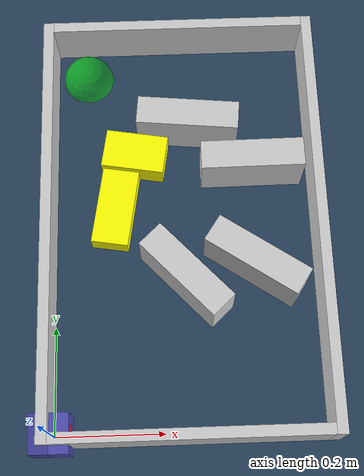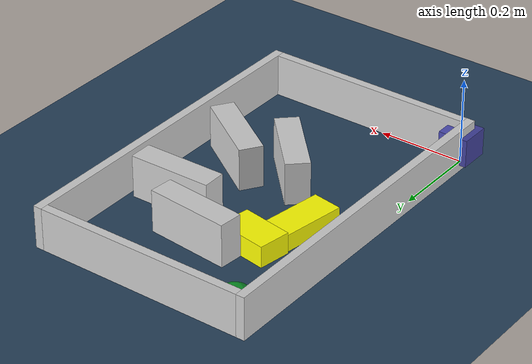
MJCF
<?xml version="1.0" ?>
<mujoco model="generated_environment">
  <option cone="elliptic" integrator="implicitfast" iterations="100" timestep="0.002"/>
  <default>
    <geom density="1"/>
  </default>
  <asset>
    <texture builtin="gradient" height="3072" rgb1="0.3 0.5 0.7" rgb2="0 0 0" type="skybox" width="512"/>
    <texture builtin="checker" height="300" mark="edge" markrgb="0.8 0.8 0.8" name="groundplane" rgb1="0.2 0.3 0.4" rgb2="0.1 0.2 0.3" type="2d" width="300"/>
    <material name="groundplane" reflectance="0.2" texrepeat="5 5" texture="groundplane" texuniform="true"/>
    <material name="robot" rgba="1.0 1.0 0.0 1.0"/>
  </asset>
  <include file="/home/dhruv/projects_dhruv/namo/namo_cpp/test_xml/little-car-modeling-package/assets/mjcf/little_car.xml"/>
  <worldbody>
    <light dir="0 0 -1" directional="true" pos="0 0 1.5"/>
    <geom condim="4" friction="0.5 0.005 0.001" material="groundplane" name="floor" size="0 0 0.05" type="plane"/>
    <body name="walls">
      <geom name="wall_1" condim="4" pos="-0.01 0.3875 0.05" friction="1 0.005 0.0001" rgba="0.800000011920929 0.800000011920929 0.800000011920929 1.0" size="0.01 0.40750000000000003 0.05" type="box"/>
      <geom name="wall_2" condim="4" pos="0.5 0.3875 0.05" friction="1 0.005 0.0001" rgba="0.800000011920929 0.800000011920929 0.800000011920929 1.0" size="0.01 0.40750000000000003 0.05" type="box"/>
      <geom name="wall_3" condim="4" pos="0.245 -0.01 0.05" friction="1 0.005 0.0001" rgba="0.800000011920929 0.800000011920929 0.800000011920929 1.0" size="0.245 0.01 0.05" type="box"/>
      <geom name="wall_4" condim="4" pos="0.245 0.785 0.05" friction="1 0.005 0.0001" rgba="0.800000011920929 0.800000011920929 0.800000011920929 1.0" size="0.245 0.01 0.05" type="box"/>
    </body>
    <body name="obstacle_1_movable">
      <geom name="obstacle_1_movable" condim="4" pos="0.1146920540393755 0.4250304051311327 0.02" quat="-0.9967141014793376 0 0 0.08099999945825155" friction="1 0.005 0.0001" rgba="1 1 0 1" size="0.035 0.075 0.02" type="box" mass="0.1"/>
      <joint type="free"/>
    </body>
    <body name="obstacle_2_movable">
      <geom name="obstacle_2_movable" condim="4" pos="0.15375134051921674 0.5346190589319925 0.025" quat="0.7630425052034915 0 0 0.6463483079986979" friction="1 0.005 0.0001" rgba="1 1 0 1" size="0.0375 0.06 0.025" type="box" mass="0.1"/>
      <joint type="free"/>
    </body>
    <body name="wall_5">
      <geom name="wall_5" condim="4" pos="0.25885003905660037 0.5905675929816 0.05" quat="0.7402189067504036 0 0 0.6723659495313823" friction="1 0.005 0.0001" rgba="0.800000011920929 0.800000011920929 0.800000011920929 1.0" size="0.0275 0.0975 0.05" type="box"/>
    </body>
    <body name="wall_6">
      <geom name="wall_6" condim="4" pos="0.3764773576228106 0.302349954335192 0.05" quat="-0.47124898698332757 0 0 0.882000222373661" friction="1 0.005 0.0001" rgba="0.800000011920929 0.800000011920929 0.800000011920929 1.0" size="0.0275 0.0975 0.05" type="box"/>
    </body>
    <body name="wall_7">
      <geom name="wall_7" condim="4" pos="0.37836293019617334 0.5015321960370293 0.05" quat="0.7035838778542944 0 0 0.7106122197257188" friction="1 0.005 0.0001" rgba="0.800000011920929 0.800000011920929 0.800000011920929 1.0" size="0.0275 0.0975 0.05" type="box"/>
    </body>
    <body name="wall_8">
      <geom name="wall_8" condim="4" pos="0.24601519937845226 0.279060736459003 0.05" quat="0.3954941958043016 0 0 0.918468475825441" friction="1 0.005 0.0001" rgba="0.800000011920929 0.800000011920929 0.800000011920929 1.0" size="0.095 0.0275 0.05" type="box"/>
    </body>
    <site name="goal" type="sphere" size="0.05 0.05 0.05" rgba="0 1 0 0.5" pos="0.060502 0.718623 0.0"/>
  </worldbody>
</mujoco>

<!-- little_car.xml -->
<mujoco model="little_car">
  <compiler angle="radian" autolimits="true"/>
  <default>
    <geom condim="4"/>
    <joint damping="0.01" armature="0.0001"/>
  </default>
  <worldbody>
    <body name="car" pos="0 0 0.010000">
      <freejoint name="car_freejoint"/>
      <inertial pos="0.000000 0 0.037500" mass="0.350000"
                diaginertia="0.000266 0.000266 0.000286"/>
      <geom name="front_chassis_collision" type="box" pos="0.017500 0 0.037500"
            size="0.017500 0.035000 0.032500"
            rgba="0.3 0.3 0.7 1"/>
      <geom name="rear_chassis_collision" type="box" pos="-0.017500 0 0.037500"
            size="0.017500 0.035000 0.032500"
            rgba="0.25 0.25 0.6 1"/>
      <geom name="front_marker" type="box" pos="0.034000 0 0.050500"
            size="0.002000 0.015000 0.010000"
            rgba="1.0 0.2 0.2 1" contype="0" conaffinity="0"/>

      <body name="rear_support_body" pos="-0.030000 0.000000 0.002500">
        <joint name="rear_caster_joint" type="ball" damping="0.0001"/>
        <inertial pos="0 0 0" mass="0.025000"
                  diaginertia="0.000001 0.000001 0.000001"/>
        <geom name="rear_support" type="sphere"
              pos="0 0 0"
              size="0.002500"
              friction="0.000000 0.000000 0.000000"
              rgba="0.7 0.1 0.1 1"/>
      </body>

      <body name="front_support_body" pos="0.030000 0.000000 0.002500">
        <joint name="front_caster_joint" type="ball" damping="0.0001"/>
        <inertial pos="0 0 0" mass="0.025000"
                  diaginertia="0.000001 0.000001 0.000001"/>
        <geom name="front_support" type="sphere"
              pos="0 0 0"
              size="0.002500"
              friction="0.000000 0.000000 0.000000"
              rgba="0.1 0.7 0.1 1"/>
      </body>

      <body name="left_wheel" pos="0.000000 0.034000 0.015000">
        <inertial pos="0 0 0" mass="0.050000"
                  diaginertia="0.000003 0.000006 0.000003"/>
        <joint name="left_wheel_joint" type="hinge" axis="0 1 0"/>
        <geom name="left_wheel_collision" type="cylinder" size="0.015000 0.000500"
              euler="1.57079632679 0 0" rgba="0.1 0.1 0.1 1"/>
      </body>

      <body name="right_wheel" pos="0.000000 -0.034000 0.015000">
        <inertial pos="0 0 0" mass="0.050000"
                  diaginertia="0.000003 0.000006 0.000003"/>
        <joint name="right_wheel_joint" type="hinge" axis="0 1 0"/>
        <geom name="right_wheel_collision" type="cylinder" size="0.015000 0.000500"
              euler="1.57079632679 0 0" rgba="0.1 0.1 0.1 1"/>
      </body>
    </body>
  </worldbody>
  <contact>
    <exclude body1="car" body2="left_wheel"/>
    <exclude body1="car" body2="right_wheel"/>
  </contact>
  <actuator>
    <velocity name="left_wheel_drive" joint="left_wheel_joint"
              ctrlrange="-25.000000 25.000000"
              kv="0.750000" forcerange="-0.500000 0.500000"/>
    <velocity name="right_wheel_drive" joint="right_wheel_joint"
              ctrlrange="-25.000000 25.000000"
              kv="0.750000" forcerange="-0.500000 0.500000"/>
  </actuator>
</mujoco>
